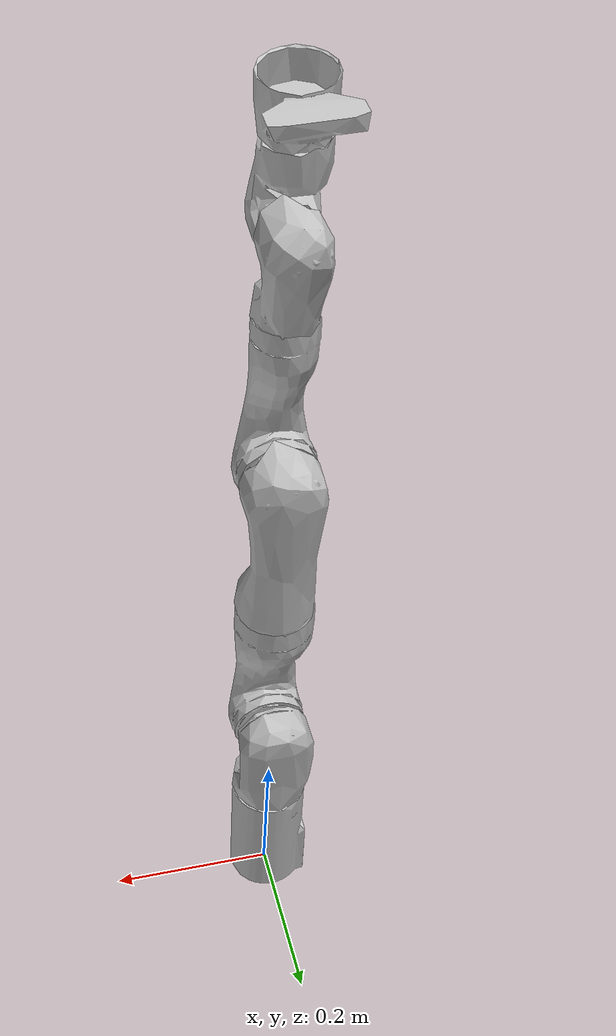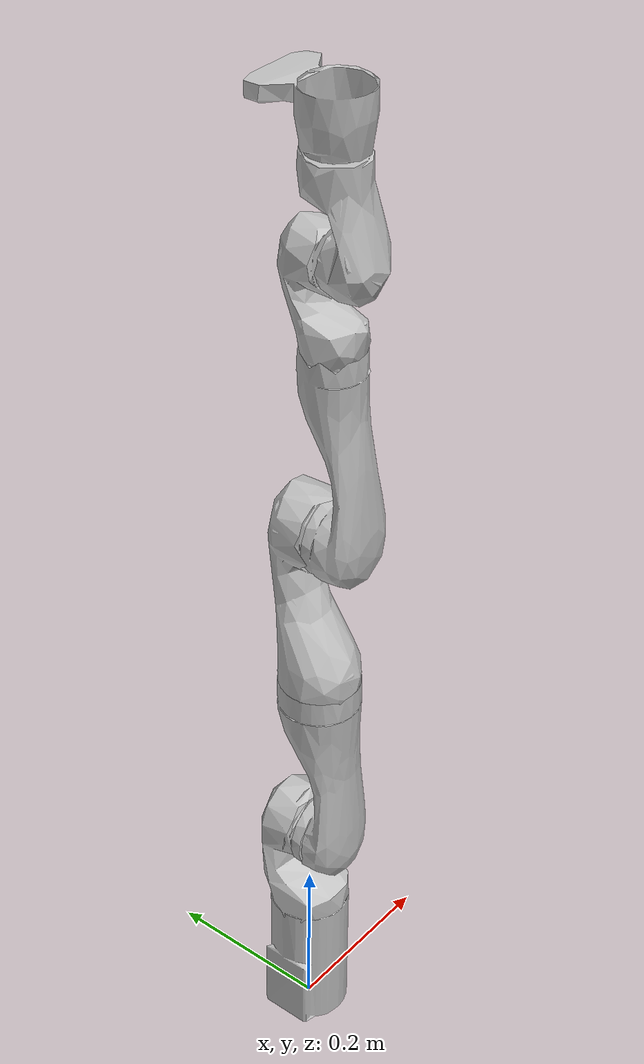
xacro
<?xml version="1.0"?>

<robot name="gen3" xmlns:xacro="http://ros.org/wiki/xacro">
	<link name="world"/>
    <!-- Arguments -->
    <xacro:arg name="arm" default="gen3" />
    <xacro:arg name="gripper" default="" />
    <xacro:arg name="sim" default="true" />

    <xacro:include filename="$(find kortex_description)/robots/srdf/gen3_trajopt.xacro" />
    <xacro:load_arm parent="base_link">
        <origin xyz="0.0 0 0.0" rpy="0 0 0"/>
    </xacro:load_arm>

    <joint name="world_to_base" type="fixed">
      <parent link="world"/>
      <child link="link_0"/>
      <origin xyz="0 0 0.001" rpy="0 0 0"/>
    </joint>

</robot>

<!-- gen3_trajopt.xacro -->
<robot name="gen3_arm" xmlns:xacro="http://ros.org/wiki/xacro">

  <!-- Propagate last link name information because it is the gripper's parent link -->
  <xacro:property name="last_arm_link" value="end_effector_link"/>

  <xacro:macro name="load_arm" params="parent:='' *origin">
      <link name="link_0">
        <inertial>
          <origin xyz="-0.000648 -0.000166 0.084487" rpy="0 0 0" />
          <mass value="1.697" />
          <inertia ixx="0.004622" ixy="9E-06" ixz="6E-05" iyy="0.004495" iyz="9E-06" izz="0.002079" />
        </inertial>
        <visual>
          <origin xyz="0 0 0" rpy="0 0 0" />
          <geometry>
            <mesh filename="package://kortex_description/arms/gen3/7dof/meshes/base_link.STL" />
          </geometry>
          <material name="">
            <color rgba="0.75294 0.75294 0.75294 1" />
          </material>
        </visual>
        <collision>
          <origin xyz="0 0 0" rpy="0 0 0" />
          <geometry>
            <mesh filename="package://kortex_description/arms/gen3/7dof/meshes/base_link.STL" />
          </geometry>
        </collision>
    </link>
    <link name="link_1">
      <inertial>
        <origin xyz="-2.3E-05 -0.010364 -0.07336" rpy="0 0 0" />
        <mass value="1.3773" />
        <inertia ixx="0.00457" ixy="1E-06" ixz="2E-06" iyy="0.004831" iyz="0.000448" izz="0.001409" />
      </inertial>
      <visual>
        <origin xyz="0 0 0" rpy="0 0 0" />
        <geometry>
          <mesh filename="package://kortex_description/arms/gen3/7dof/meshes/shoulder_link.STL" />
        </geometry>
        <material name="">
          <color rgba="0.75294 0.75294 0.75294 1" />
        </material>
      </visual>
      <collision>
        <origin xyz="0 0 0" rpy="0 0 0" />
        <geometry>
          <mesh filename="package://kortex_description/arms/gen3/7dof/meshes/shoulder_link.STL" />
        </geometry>
      </collision>
    </link>
    <joint
      name="joint_1"
      type="continuous">
      <origin xyz="0 0 0.15643" rpy="3.1416 2.7629E-18 -4.9305E-36" />
      <parent
        link="link_0" />
      <child
        link="link_1" />
      <axis
        xyz="0 0 1" />
      <limit
        effort="39"
        velocity="0.8727" />
    </joint>
    <link name="link_2">
      <inertial>
        <origin xyz="-4.4E-05 -0.09958 -0.013278" rpy="0 0 0" />
        <mass value="1.1636" />
        <inertia ixx="0.011088" ixy="5E-06" ixz="0" iyy="0.001072" iyz="-0.000691" izz="0.011255" />
      </inertial>
      <visual>
        <origin xyz="0 0 0" rpy="0 0 0" />
        <geometry>
          <mesh filename="package://kortex_description/arms/gen3/7dof/meshes/half_arm_1_link.STL" />
        </geometry>
        <material name="">
          <color rgba="0.75294 0.75294 0.75294 1" />
        </material>
      </visual>
      <collision>
        <origin xyz="0 0 0" rpy="0 0 0" />
        <geometry>
          <mesh filename="package://kortex_description/arms/gen3/7dof/meshes/half_arm_1_link.STL" />
        </geometry>
      </collision>
    </link>
    <joint
      name="joint_2"
      type="revolute">
      <origin xyz="0 0.005375 -0.12838" rpy="1.5708 2.1343E-17 -1.1102E-16" />
      <parent
        link="link_1" />
      <child
        link="link_2" />
      <axis
        xyz="0 0 1" />
      <limit lower="-2.17" upper="2.17" effort="39" velocity="0.8727" />
    </joint>
    <link name="link_3">
      <inertial>
        <origin xyz="-4.4E-05 -0.006641 -0.117892" rpy="0 0 0" />
        <mass value="1.1636" />
        <inertia ixx="0.010932" ixy="0" ixz="-7E-06" iyy="0.011127" iyz="0.000606" izz="0.001043" />
      </inertial>
      <visual>
        <origin xyz="0 0 0" rpy="0 0 0" />
        <geometry>
          <mesh filename="package://kortex_description/arms/gen3/7dof/meshes/half_arm_2_link.STL" />
        </geometry>
        <material name="">
          <color rgba="0.75294 0.75294 0.75294 1" />
        </material>
      </visual>
      <collision>
        <origin xyz="0 0 0" rpy="0 0 0" />
        <geometry>
          <mesh filename="package://kortex_description/arms/gen3/7dof/meshes/half_arm_2_link.STL" />
        </geometry>
      </collision>
    </link>
    <joint
      name="joint_3"
      type="continuous">
      <origin xyz="0 -0.21038 -0.006375" rpy="-1.5708 1.2326E-32 -2.9122E-16" />
      <parent
        link="link_2" />
      <child
        link="link_3" />
      <axis
        xyz="0 0 1" />
      <limit
        effort="39"
        velocity="0.8727" />
    </joint>
    <link name="link_4">
      <inertial>
        <origin xyz="-1.8E-05 -0.075478 -0.015006" rpy="0 0 0" />
        <mass value="0.9302" />
        <inertia ixx="0.008147" ixy="-1E-06" ixz="0" iyy="0.000631" iyz="-0.0005" izz="0.008316" />
      </inertial>
      <visual>
        <origin xyz="0 0 0" rpy="0 0 0" />
        <geometry>
          <mesh filename="package://kortex_description/arms/gen3/7dof/meshes/forearm_link.STL" />
        </geometry>
        <material name="">
          <color rgba="0.75294 0.75294 0.75294 1" />
        </material>
      </visual>
      <collision>
        <origin xyz="0 0 0" rpy="0 0 0" />
        <geometry>
          <mesh filename="package://kortex_description/arms/gen3/7dof/meshes/forearm_link.STL" />
        </geometry>
      </collision>
    </link>
    <joint
      name="joint_4"
      type="revolute">
      <origin xyz="0 0.006375 -0.21038" rpy="1.5708 -6.6954E-17 -1.6653E-16" />
      <parent
        link="link_3" />
      <child
        link="link_4" />
      <axis
        xyz="0 0 1" />
      <limit lower="-2.39" upper="2.39" effort="39" velocity="0.8727" />
    </joint>
    <link name="link_5">
      <inertial>
        <origin xyz="1E-06 -0.009432 -0.063883" rpy="0 0 0" />
        <mass value="0.6781" />
        <inertia ixx="0.001596" ixy="0" ixz="0" iyy="0.001607" iyz="0.000256" izz="0.000399" />
      </inertial>
      <visual>
        <origin xyz="0 0 0" rpy="0 0 0" />
        <geometry>
          <mesh filename="package://kortex_description/arms/gen3/7dof/meshes/spherical_wrist_1_link.STL" />
        </geometry>
        <material name="">
          <color rgba="0.75294 0.75294 0.75294 1" />
        </material>
      </visual>
      <collision>
        <origin xyz="0 0 0" rpy="0 0 0" />
        <geometry>
          <mesh filename="package://kortex_description/arms/gen3/7dof/meshes/spherical_wrist_1_link.STL" />
        </geometry>
      </collision>
    </link>
    <joint
      name="joint_5"
      type="continuous">
      <origin xyz="0 -0.20843 -0.006375" rpy="-1.5708 2.2204E-16 -6.373E-17" />
      <parent
        link="link_4" />
      <child
        link="link_5" />
      <axis
        xyz="0 0 1" />
      <limit
        effort="9"
        velocity="0.8727" />
    </joint>
    <link name="link_6">
      <inertial>
        <origin xyz="1E-06 -0.045483 -0.00965" rpy="0 0 0" />
        <mass value="0.6781" />
        <inertia ixx="0.001641" ixy="0" ixz="0" iyy="0.00041" iyz="-0.000278" izz="0.001641" />
      </inertial>
      <visual>
        <origin xyz="0 0 0" rpy="0 0 0" />
        <geometry>
          <mesh filename="package://kortex_description/arms/gen3/7dof/meshes/spherical_wrist_2_link.STL" />
        </geometry>
        <material name="">
          <color rgba="0.75294 0.75294 0.75294 1" />
        </material>
      </visual>
      <collision>
        <origin xyz="0 0 0" rpy="0 0 0" />
        <geometry>
          <mesh filename="package://kortex_description/arms/gen3/7dof/meshes/spherical_wrist_2_link.STL" />
        </geometry>
      </collision>
    </link>
    <joint
      name="joint_6"
      type="revolute">
      <origin xyz="0 0.00017505 -0.10593" rpy="1.5708 9.2076E-28 -8.2157E-15" />
      <parent
        link="link_5" />
      <child
        link="link_6" />
      <axis
        xyz="0 0 1" />
      <limit lower="-2.00" upper="2.00" effort="9" velocity="0.8727" />
    </joint>
    <link name="link_7">
      <inertial>
        <origin xyz="-0.000281 -0.011402 -0.029798" rpy="0 0 0" />
        <mass value="0.5006" />
        <inertia ixx="0.000587" ixy="3E-06" ixz="3E-06" iyy="0.000369" iyz="0.000118" izz="0.000609" />
      </inertial>
      <visual>
        <origin xyz="0 0 0" rpy="0 0 0" />
        <geometry>
          <mesh filename="package://kortex_description/arms/gen3/7dof/meshes/bracelet_with_vision_link.STL" />
        </geometry>
        <material name="">
          <color rgba="0.75294 0.75294 0.75294 1" />
        </material>
      </visual>
      <collision>
        <origin xyz="0 0 0" rpy="0 0 0" />
        <geometry>
          <mesh filename="package://kortex_description/arms/gen3/7dof/meshes/bracelet_with_vision_link.STL" />
        </geometry>
      </collision>
    </link>
    <joint
      name="joint_7"
      type="continuous">
      <origin xyz="0 -0.10593 -0.00017505" rpy="-1.5708 -5.5511E-17 9.6396E-17" />
      <parent
        link="link_6" />
      <child
        link="link_7" />
      <axis
        xyz="0 0 1" />
      <limit
        effort="9"
        velocity="0.8727" />
    </joint>
    <link name="end_effector_link" />
    <joint
      name="end_effector_joint"
      type="fixed">
      <origin xyz="0 0 -0.0615250000000001" rpy="3.14159265358979 1.09937075168372E-32 0" />
      <parent
        link="link_7" />
      <child
        link="end_effector_link" />
      <axis
        xyz="0 0 0" />
    </joint>
  </xacro:macro>
</robot>
